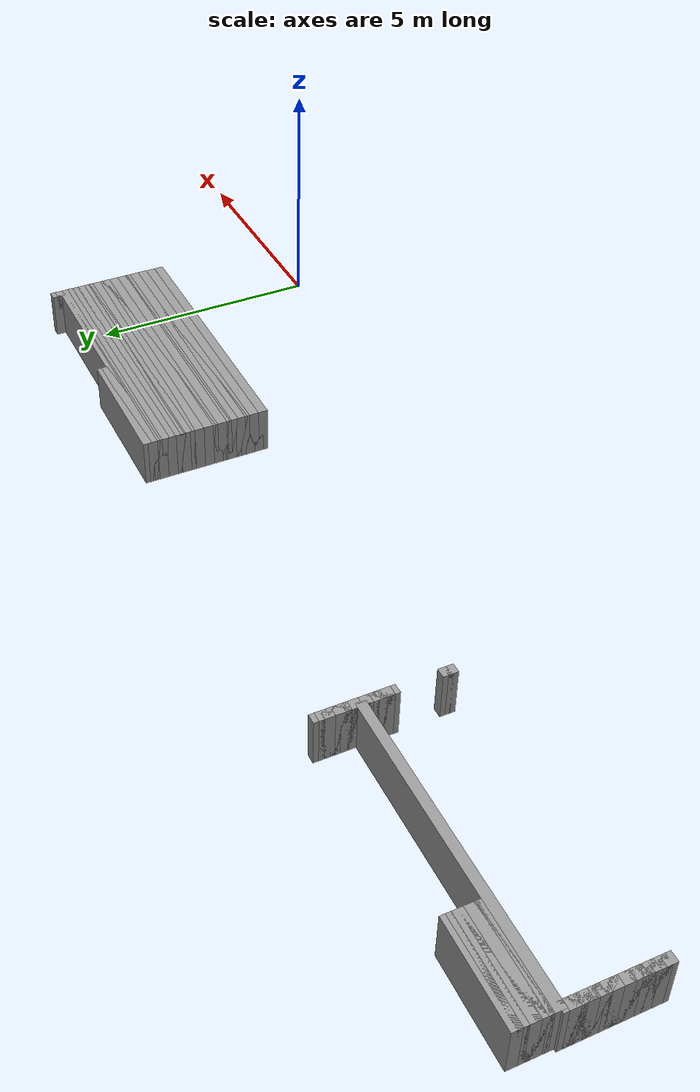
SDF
<sdf version="1.6">
 <world name="GridMap">
  <model name="GridMap">
   <link name="Wall_(198.5,35.0)">
    <collision name="Wall_(198.5,35.0)_Collision">
     <geometry><box><size>0.2 0.2 1.0</size></box></geometry>
     <pose>-19.85 3.5 0.5 0 -0 0</pose>
    </collision>
    <visual name="Wall_(198.5,35.0)_Visual">
     <geometry><box><size>0.2 0.2 1.0</size></box></geometry>
     <pose>-19.85 3.5 0.5 0 -0 0</pose>
     <material>
      <script><uri>file://media/materials/scripts/gazebo.material</uri><name>Gazebo/Grey</name></script>
      <ambient>1 1 1 1</ambient>
     </material>
     <meta><layer>0</layer></meta>
    </visual>
    <pose>0 0 0.5 0 -0 0</pose>
   </link>
   <link name="Wall_(30.0,36.0)">
    <collision name="Wall_(30.0,36.0)_Collision">
     <geometry><box><size>6.0 0.2 1.0</size></box></geometry>
     <pose>-3.0 3.6 0.5 0 -0 0</pose>
    </collision>
    <visual name="Wall_(30.0,36.0)_Visual">
     <geometry><box><size>6.0 0.2 1.0</size></box></geometry>
     <pose>-3.0 3.6 0.5 0 -0 0</pose>
     <material>
      <script><uri>file://media/materials/scripts/gazebo.material</uri><name>Gazebo/Grey</name></script>
      <ambient>1 1 1 1</ambient>
     </material>
     <meta><layer>0</layer></meta>
    </visual>
    <pose>0 0 0.5 0 -0 0</pose>
   </link>
   <link name="Wall_(138.0,36.0)">
    <collision name="Wall_(138.0,36.0)_Collision">
     <geometry><box><size>0.2 0.2 1.0</size></box></geometry>
     <pose>-13.8 3.6 0.5 0 -0 0</pose>
    </collision>
    <visual name="Wall_(138.0,36.0)_Visual">
     <geometry><box><size>0.2 0.2 1.0</size></box></geometry>
     <pose>-13.8 3.6 0.5 0 -0 0</pose>
     <material>
      <script><uri>file://media/materials/scripts/gazebo.material</uri><name>Gazebo/Grey</name></script>
      <ambient>1 1 1 1</ambient>
     </material>
     <meta><layer>0</layer></meta>
    </visual>
    <pose>0 0 0.5 0 -0 0</pose>
   </link>
   <link name="Wall_(198.5,36.0)">
    <collision name="Wall_(198.5,36.0)_Collision">
     <geometry><box><size>0.2 0.2 1.0</size></box></geometry>
     <pose>-19.85 3.6 0.5 0 -0 0</pose>
    </collision>
    <visual name="Wall_(198.5,36.0)_Visual">
     <geometry><box><size>0.2 0.2 1.0</size></box></geometry>
     <pose>-19.85 3.6 0.5 0 -0 0</pose>
     <material>
      <script><uri>file://media/materials/scripts/gazebo.material</uri><name>Gazebo/Grey</name></script>
      <ambient>1 1 1 1</ambient>
     </material>
     <meta><layer>0</layer></meta>
    </visual>
    <pose>0 0 0.5 0 -0 0</pose>
   </link>
   <link name="Wall_(30.0,37.0)">
    <collision name="Wall_(30.0,37.0)_Collision">
     <geometry><box><size>6.0 0.2 1.0</size></box></geometry>
     <pose>-3.0 3.7 0.5 0 -0 0</pose>
    </collision>
    <visual name="Wall_(30.0,37.0)_Visual">
     <geometry><box><size>6.0 0.2 1.0</size></box></geometry>
     <pose>-3.0 3.7 0.5 0 -0 0</pose>
     <material>
      <script><uri>file://media/materials/scripts/gazebo.material</uri><name>Gazebo/Grey</name></script>
      <ambient>1 1 1 1</ambient>
     </material>
     <meta><layer>0</layer></meta>
    </visual>
    <pose>0 0 0.5 0 -0 0</pose>
   </link>
   <link name="Wall_(138.0,37.0)">
    <collision name="Wall_(138.0,37.0)_Collision">
     <geometry><box><size>0.2 0.2 1.0</size></box></geometry>
     <pose>-13.8 3.7 0.5 0 -0 0</pose>
    </collision>
    <visual name="Wall_(138.0,37.0)_Visual">
     <geometry><box><size>0.2 0.2 1.0</size></box></geometry>
     <pose>-13.8 3.7 0.5 0 -0 0</pose>
     <material>
      <script><uri>file://media/materials/scripts/gazebo.material</uri><name>Gazebo/Grey</name></script>
      <ambient>1 1 1 1</ambient>
     </material>
     <meta><layer>0</layer></meta>
    </visual>
    <pose>0 0 0.5 0 -0 0</pose>
   </link>
   <link name="Wall_(198.5,37.0)">
    <collision name="Wall_(198.5,37.0)_Collision">
     <geometry><box><size>0.2 0.2 1.0</size></box></geometry>
     <pose>-19.85 3.7 0.5 0 -0 0</pose>
    </collision>
    <visual name="Wall_(198.5,37.0)_Visual">
     <geometry><box><size>0.2 0.2 1.0</size></box></geometry>
     <pose>-19.85 3.7 0.5 0 -0 0</pose>
     <material>
      <script><uri>file://media/materials/scripts/gazebo.material</uri><name>Gazebo/Grey</name></script>
      <ambient>1 1 1 1</ambient>
     </material>
     <meta><layer>0</layer></meta>
    </visual>
    <pose>0 0 0.5 0 -0 0</pose>
   </link>
   <link name="Wall_(30.0,38.0)">
    <collision name="Wall_(30.0,38.0)_Collision">
     <geometry><box><size>6.0 0.2 1.0</size></box></geometry>
     <pose>-3.0 3.8 0.5 0 -0 0</pose>
    </collision>
    <visual name="Wall_(30.0,38.0)_Visual">
     <geometry><box><size>6.0 0.2 1.0</size></box></geometry>
     <pose>-3.0 3.8 0.5 0 -0 0</pose>
     <material>
      <script><uri>file://media/materials/scripts/gazebo.material</uri><name>Gazebo/Grey</name></script>
      <ambient>1 1 1 1</ambient>
     </material>
     <meta><layer>0</layer></meta>
    </visual>
    <pose>0 0 0.5 0 -0 0</pose>
   </link>
   <link name="Wall_(198.5,38.0)">
    <collision name="Wall_(198.5,38.0)_Collision">
     <geometry><box><size>0.2 0.2 1.0</size></box></geometry>
     <pose>-19.85 3.8 0.5 0 -0 0</pose>
    </collision>
    <visual name="Wall_(198.5,38.0)_Visual">
     <geometry><box><size>0.2 0.2 1.0</size></box></geometry>
     <pose>-19.85 3.8 0.5 0 -0 0</pose>
     <material>
      <script><uri>file://media/materials/scripts/gazebo.material</uri><name>Gazebo/Grey</name></script>
      <ambient>1 1 1 1</ambient>
     </material>
     <meta><layer>0</layer></meta>
    </visual>
    <pose>0 0 0.5 0 -0 0</pose>
   </link>
   <link name="Wall_(30.0,39.0)">
    <collision name="Wall_(30.0,39.0)_Collision">
     <geometry><box><size>6.0 0.2 1.0</size></box></geometry>
     <pose>-3.0 3.9 0.5 0 -0 0</pose>
    </collision>
    <visual name="Wall_(30.0,39.0)_Visual">
     <geometry><box><size>6.0 0.2 1.0</size></box></geometry>
     <pose>-3.0 3.9 0.5 0 -0 0</pose>
     <material>
      <script><uri>file://media/materials/scripts/gazebo.material</uri><name>Gazebo/Grey</name></script>
      <ambient>1 1 1 1</ambient>
     </material>
     <meta><layer>0</layer></meta>
    </visual>
    <pose>0 0 0.5 0 -0 0</pose>
   </link>
   <link name="Wall_(198.5,39.0)">
    <collision name="Wall_(198.5,39.0)_Collision">
     <geometry><box><size>0.2 0.2 1.0</size></box></geometry>
     <pose>-19.85 3.9 0.5 0 -0 0</pose>
    </collision>
    <visual name="Wall_(198.5,39.0)_Visual">
     <geometry><box><size>0.2 0.2 1.0</size></box></geometry>
     <pose>-19.85 3.9 0.5 0 -0 0</pose>
     <material>
      <script><uri>file://media/materials/scripts/gazebo.material</uri><name>Gazebo/Grey</name></script>
      <ambient>1 1 1 1</ambient>
     </material>
     <meta><layer>0</layer></meta>
    </visual>
    <pose>0 0 0.5 0 -0 0</pose>
   </link>
   <link name="Wall_(30.0,40.0)">
    <collision name="Wall_(30.0,40.0)_Collision">
     <geometry><box><size>6.0 0.2 1.0</size></box></geometry>
     <pose>-3.0 4.0 0.5 0 -0 0</pose>
    </collision>
    <visual name="Wall_(30.0,40.0)_Visual">
     <geometry><box><size>6.0 0.2 1.0</size></box></geometry>
     <pose>-3.0 4.0 0.5 0 -0 0</pose>
     <material>
      <script><uri>file://media/materials/scripts/gazebo.material</uri><name>Gazebo/Grey</name></script>
      <ambient>1 1 1 1</ambient>
     </material>
     <meta><layer>0</layer></meta>
    </visual>
    <pose>0 0 0.5 0 -0 0</pose>
   </link>
   <link name="Wall_(198.5,40.0)">
    <collision name="Wall_(198.5,40.0)_Collision">
     <geometry><box><size>0.2 0.2 1.0</size></box></geometry>
     <pose>-19.85 4.0 0.5 0 -0 0</pose>
    </collision>
    <visual name="Wall_(198.5,40.0)_Visual">
     <geometry><box><size>0.2 0.2 1.0</size></box></geometry>
     <pose>-19.85 4.0 0.5 0 -0 0</pose>
     <material>
      <script><uri>file://media/materials/scripts/gazebo.material</uri><name>Gazebo/Grey</name></script>
      <ambient>1 1 1 1</ambient>
     </material>
     <meta><layer>0</layer></meta>
    </visual>
    <pose>0 0 0.5 0 -0 0</pose>
   </link>
   <link name="Wall_(30.0,41.0)">
    <collision name="Wall_(30.0,41.0)_Collision">
     <geometry><box><size>6.0 0.2 1.0</size></box></geometry>
     <pose>-3.0 4.1 0.5 0 -0 0</pose>
    </collision>
    <visual name="Wall_(30.0,41.0)_Visual">
     <geometry><box><size>6.0 0.2 1.0</size></box></geometry>
     <pose>-3.0 4.1 0.5 0 -0 0</pose>
     <material>
      <script><uri>file://media/materials/scripts/gazebo.material</uri><name>Gazebo/Grey</name></script>
      <ambient>1 1 1 1</ambient>
     </material>
     <meta><layer>0</layer></meta>
    </visual>
    <pose>0 0 0.5 0 -0 0</pose>
   </link>
   <link name="Wall_(198.5,41.0)">
    <collision name="Wall_(198.5,41.0)_Collision">
     <geometry><box><size>0.2 0.2 1.0</size></box></geometry>
     <pose>-19.85 4.1 0.5 0 -0 0</pose>
    </collision>
    <visual name="Wall_(198.5,41.0)_Visual">
     <geometry><box><size>0.2 0.2 1.0</size></box></geometry>
     <pose>-19.85 4.1 0.5 0 -0 0</pose>
     <material>
      <script><uri>file://media/materials/scripts/gazebo.material</uri><name>Gazebo/Grey</name></script>
      <ambient>1 1 1 1</ambient>
     </material>
     <meta><layer>0</layer></meta>
    </visual>
    <pose>0 0 0.5 0 -0 0</pose>
   </link>
   <link name="Wall_(30.0,42.0)">
    <collision name="Wall_(30.0,42.0)_Collision">
     <geometry><box><size>6.0 0.2 1.0</size></box></geometry>
     <pose>-3.0 4.2 0.5 0 -0 0</pose>
    </collision>
    <visual name="Wall_(30.0,42.0)_Visual">
     <geometry><box><size>6.0 0.2 1.0</size></box></geometry>
     <pose>-3.0 4.2 0.5 0 -0 0</pose>
     <material>
      <script><uri>file://media/materials/scripts/gazebo.material</uri><name>Gazebo/Grey</name></script>
      <ambient>1 1 1 1</ambient>
     </material>
     <meta><layer>0</layer></meta>
    </visual>
    <pose>0 0 0.5 0 -0 0</pose>
   </link>
   <link name="Wall_(198.5,42.0)">
    <collision name="Wall_(198.5,42.0)_Collision">
     <geometry><box><size>0.2 0.2 1.0</size></box></geometry>
     <pose>-19.85 4.2 0.5 0 -0 0</pose>
    </collision>
    <visual name="Wall_(198.5,42.0)_Visual">
     <geometry><box><size>0.2 0.2 1.0</size></box></geometry>
     <pose>-19.85 4.2 0.5 0 -0 0</pose>
     <material>
      <script><uri>file://media/materials/scripts/gazebo.material</uri><name>Gazebo/Grey</name></script>
      <ambient>1 1 1 1</ambient>
     </material>
     <meta><layer>0</layer></meta>
    </visual>
    <pose>0 0 0.5 0 -0 0</pose>
   </link>
   <link name="Wall_(30.0,43.0)">
    <collision name="Wall_(30.0,43.0)_Collision">
     <geometry><box><size>6.0 0.2 1.0</size></box></geometry>
     <pose>-3.0 4.3 0.5 0 -0 0</pose>
    </collision>
    <visual name="Wall_(30.0,43.0)_Visual">
     <geometry><box><size>6.0 0.2 1.0</size></box></geometry>
     <pose>-3.0 4.3 0.5 0 -0 0</pose>
     <material>
      <script><uri>file://media/materials/scripts/gazebo.material</uri><name>Gazebo/Grey</name></script>
      <ambient>1 1 1 1</ambient>
     </material>
     <meta><layer>0</layer></meta>
    </visual>
    <pose>0 0 0.5 0 -0 0</pose>
   </link>
   <link name="Wall_(198.5,43.0)">
    <collision name="Wall_(198.5,43.0)_Collision">
     <geometry><box><size>0.2 0.2 1.0</size></box></geometry>
     <pose>-19.85 4.3 0.5 0 -0 0</pose>
    </collision>
    <visual name="Wall_(198.5,43.0)_Visual">
     <geometry><box><size>0.2 0.2 1.0</size></box></geometry>
     <pose>-19.85 4.3 0.5 0 -0 0</pose>
     <material>
      <script><uri>file://media/materials/scripts/gazebo.material</uri><name>Gazebo/Grey</name></script>
      <ambient>1 1 1 1</ambient>
     </material>
     <meta><layer>0</layer></meta>
    </visual>
    <pose>0 0 0.5 0 -0 0</pose>
   </link>
   <link name="Wall_(30.0,44.0)">
    <collision name="Wall_(30.0,44.0)_Collision">
     <geometry><box><size>6.0 0.2 1.0</size></box></geometry>
     <pose>-3.0 4.4 0.5 0 -0 0</pose>
    </collision>
    <visual name="Wall_(30.0,44.0)_Visual">
     <geometry><box><size>6.0 0.2 1.0</size></box></geometry>
     <pose>-3.0 4.4 0.5 0 -0 0</pose>
     <material>
      <script><uri>file://media/materials/scripts/gazebo.material</uri><name>Gazebo/Grey</name></script>
      <ambient>1 1 1 1</ambient>
     </material>
     <meta><layer>0</layer></meta>
    </visual>
    <pose>0 0 0.5 0 -0 0</pose>
   </link>
   <link name="Wall_(198.5,44.0)">
    <collision name="Wall_(198.5,44.0)_Collision">
     <geometry><box><size>0.2 0.2 1.0</size></box></geometry>
     <pose>-19.85 4.4 0.5 0 -0 0</pose>
    </collision>
    <visual name="Wall_(198.5,44.0)_Visual">
     <geometry><box><size>0.2 0.2 1.0</size></box></geometry>
     <pose>-19.85 4.4 0.5 0 -0 0</pose>
     <material>
      <script><uri>file://media/materials/scripts/gazebo.material</uri><name>Gazebo/Grey</name></script>
      <ambient>1 1 1 1</ambient>
     </material>
     <meta><layer>0</layer></meta>
    </visual>
    <pose>0 0 0.5 0 -0 0</pose>
   </link>
   <link name="Wall_(30.0,45.0)">
    <collision name="Wall_(30.0,45.0)_Collision">
     <geometry><box><size>6.0 0.2 1.0</size></box></geometry>
     <pose>-3.0 4.5 0.5 0 -0 0</pose>
    </collision>
    <visual name="Wall_(30.0,45.0)_Visual">
     <geometry><box><size>6.0 0.2 1.0</size></box></geometry>
     <pose>-3.0 4.5 0.5 0 -0 0</pose>
     <material>
      <script><uri>file://media/materials/scripts/gazebo.material</uri><name>Gazebo/Grey</name></script>
      <ambient>1 1 1 1</ambient>
     </material>
     <meta><layer>0</layer></meta>
    </visual>
    <pose>0 0 0.5 0 -0 0</pose>
   </link>
   <link name="Wall_(198.5,45.0)">
    <collision name="Wall_(198.5,45.0)_Collision">
     <geometry><box><size>0.2 0.2 1.0</size></box></geometry>
     <pose>-19.85 4.5 0.5 0 -0 0</pose>
    </collision>
    <visual name="Wall_(198.5,45.0)_Visual">
     <geometry><box><size>0.2 0.2 1.0</size></box></geometry>
     <pose>-19.85 4.5 0.5 0 -0 0</pose>
     <material>
      <script><uri>file://media/materials/scripts/gazebo.material</uri><name>Gazebo/Grey</name></script>
      <ambient>1 1 1 1</ambient>
     </material>
     <meta><layer>0</layer></meta>
    </visual>
    <pose>0 0 0.5 0 -0 0</pose>
   </link>
   <link name="Wall_(30.0,46.0)">
    <collision name="Wall_(30.0,46.0)_Collision">
     <geometry><box><size>6.0 0.2 1.0</size></box></geometry>
     <pose>-3.0 4.6 0.5 0 -0 0</pose>
    </collision>
    <visual name="Wall_(30.0,46.0)_Visual">
     <geometry><box><size>6.0 0.2 1.0</size></box></geometry>
     <pose>-3.0 4.6 0.5 0 -0 0</pose>
     <material>
      <script><uri>file://media/materials/scripts/gazebo.material</uri><name>Gazebo/Grey</name></script>
      <ambient>1 1 1 1</ambient>
     </material>
     <meta><layer>0</layer></meta>
    </visual>
    <pose>0 0 0.5 0 -0 0</pose>
   </link>
   <link name="Wall_(198.5,46.0)">
    <collision name="Wall_(198.5,46.0)_Collision">
     <geometry><box><size>0.2 0.2 1.0</size></box></geometry>
     <pose>-19.85 4.6 0.5 0 -0 0</pose>
    </collision>
    <visual name="Wall_(198.5,46.0)_Visual">
     <geometry><box><size>0.2 0.2 1.0</size></box></geometry>
     <pose>-19.85 4.6 0.5 0 -0 0</pose>
     <material>
      <script><uri>file://media/materials/scripts/gazebo.material</uri><name>Gazebo/Grey</name></script>
      <ambient>1 1 1 1</ambient>
     </material>
     <meta><layer>0</layer></meta>
    </visual>
    <pose>0 0 0.5 0 -0 0</pose>
   </link>
   <link name="Wall_(30.0,47.0)">
    <collision name="Wall_(30.0,47.0)_Collision">
     <geometry><box><size>6.0 0.2 1.0</size></box></geometry>
     <pose>-3.0 4.7 0.5 0 -0 0</pose>
    </collision>
    <visual name="Wall_(30.0,47.0)_Visual">
     <geometry><box><size>6.0 0.2 1.0</size></box></geometry>
     <pose>-3.0 4.7 0.5 0 -0 0</pose>
     <material>
      <script><uri>file://media/materials/scripts/gazebo.material</uri><name>Gazebo/Grey</name></script>
      <ambient>1 1 1 1</ambient>
     </material>
     <meta><layer>0</layer></meta>
    </visual>
    <pose>0 0 0.5 0 -0 0</pose>
   </link>
   <link name="Wall_(138.0,47.0)">
    <collision name="Wall_(138.0,47.0)_Collision">
     <geometry><box><size>0.2 0.2 1.0</size></box></geometry>
     <pose>-13.8 4.7 0.5 0 -0 0</pose>
    </collision>
    <visual name="Wall_(138.0,47.0)_Visual">
     <geometry><box><size>0.2 0.2 1.0</size></box></geometry>
     <pose>-13.8 4.7 0.5 0 -0 0</pose>
     <material>
      <script><uri>file://media/materials/scripts/gazebo.material</uri><name>Gazebo/Grey</name></script>
      <ambient>1 1 1 1</ambient>
     </material>
     <meta><layer>0</layer></meta>
    </visual>
    <pose>0 0 0.5 0 -0 0</pose>
   </link>
   <link name="Wall_(198.5,47.0)">
    <collision name="Wall_(198.5,47.0)_Collision">
     <geometry><box><size>0.2 0.2 1.0</size></box></geometry>
     <pose>-19.85 4.7 0.5 0 -0 0</pose>
    </collision>
    <visual name="Wall_(198.5,47.0)_Visual">
     <geometry><box><size>0.2 0.2 1.0</size></box></geometry>
     <pose>-19.85 4.7 0.5 0 -0 0</pose>
     <material>
      <script><uri>file://media/materials/scripts/gazebo.material</uri><name>Gazebo/Grey</name></script>
      <ambient>1 1 1 1</ambient>
     </material>
     <meta><layer>0</layer></meta>
    </visual>
    <pose>0 0 0.5 0 -0 0</pose>
   </link>
   <link name="Wall_(30.0,48.0)">
    <collision name="Wall_(30.0,48.0)_Collision">
     <geometry><box><size>6.0 0.2 1.0</size></box></geometry>
     <pose>-3.0 4.8 0.5 0 -0 0</pose>
    </collision>
    <visual name="Wall_(30.0,48.0)_Visual">
     <geometry><box><size>6.0 0.2 1.0</size></box></geometry>
     <pose>-3.0 4.8 0.5 0 -0 0</pose>
     <material>
      <script><uri>file://media/materials/scripts/gazebo.material</uri><name>Gazebo/Grey</name></script>
      <ambient>1 1 1 1</ambient>
     </material>
     <meta><layer>0</layer></meta>
    </visual>
    <pose>0 0 0.5 0 -0 0</pose>
   </link>
   <link name="Wall_(138.0,48.0)">
    <collision name="Wall_(138.0,48.0)_Collision">
     <geometry><box><size>0.2 0.2 1.0</size></box></geometry>
     <pose>-13.8 4.8 0.5 0 -0 0</pose>
    </collision>
    <visual name="Wall_(138.0,48.0)_Visual">
     <geometry><box><size>0.2 0.2 1.0</size></box></geometry>
     <pose>-13.8 4.8 0.5 0 -0 0</pose>
     <material>
      <script><uri>file://media/materials/scripts/gazebo.material</uri><name>Gazebo/Grey</name></script>
      <ambient>1 1 1 1</ambient>
     </material>
     <meta><layer>0</layer></meta>
    </visual>
    <pose>0 0 0.5 0 -0 0</pose>
   </link>
   <link name="Wall_(198.5,48.0)">
    <collision name="Wall_(198.5,48.0)_Collision">
     <geometry><box><size>0.2 0.2 1.0</size></box></geometry>
     <pose>-19.85 4.8 0.5 0 -0 0</pose>
    </collision>
    <visual name="Wall_(198.5,48.0)_Visual">
     <geometry><box><size>0.2 0.2 1.0</size></box></geometry>
     <pose>-19.85 4.8 0.5 0 -0 0</pose>
     <material>
      <script><uri>file://media/materials/scripts/gazebo.material</uri><name>Gazebo/Grey</name></script>
      <ambient>1 1 1 1</ambient>
     </material>
     <meta><layer>0</layer></meta>
    </visual>
    <pose>0 0 0.5 0 -0 0</pose>
   </link>
   <link name="Wall_(30.0,49.0)">
    <collision name="Wall_(30.0,49.0)_Collision">
     <geometry><box><size>6.0 0.2 1.0</size></box></geometry>
     <pose>-3.0 4.9 0.5 0 -0 0</pose>
    </collision>
    <visual name="Wall_(30.0,49.0)_Visual">
     <geometry><box><size>6.0 0.2 1.0</size></box></geometry>
     <pose>-3.0 4.9 0.5 0 -0 0</pose>
     <material>
      <script><uri>file://media/materials/scripts/gazebo.material</uri><name>Gazebo/Grey</name></script>
      <ambient>1 1 1 1</ambient>
     </material>
     <meta><layer>0</layer></meta>
    </visual>
    <pose>0 0 0.5 0 -0 0</pose>
   </link>
   <link name="Wall_(138.0,49.0)">
    <collision name="Wall_(138.0,49.0)_Collision">
     <geometry><box><size>0.2 0.2 1.0</size></box></geometry>
     <pose>-13.8 4.9 0.5 0 -0 0</pose>
    </collision>
    <visual name="Wall_(138.0,49.0)_Visual">
     <geometry><box><size>0.2 0.2 1.0</size></box></geometry>
     <pose>-13.8 4.9 0.5 0 -0 0</pose>
     <material>
      <script><uri>file://media/materials/scripts/gazebo.material</uri><name>Gazebo/Grey</name></script>
      <ambient>1 1 1 1</ambient>
     </material>
     <meta><layer>0</layer></meta>
    </visual>
    <pose>0 0 0.5 0 -0 0</pose>
   </link>
   <link name="Wall_(198.5,49.0)">
    <collision name="Wall_(198.5,49.0)_Collision">
     <geometry><box><size>0.2 0.2 1.0</size></box></geometry>
     <pose>-19.85 4.9 0.5 0 -0 0</pose>
    </collision>
    <visual name="Wall_(198.5,49.0)_Visual">
     <geometry><box><size>0.2 0.2 1.0</size></box></geometry>
     <pose>-19.85 4.9 0.5 0 -0 0</pose>
     <material>
      <script><uri>file://media/materials/scripts/gazebo.material</uri><name>Gazebo/Grey</name></script>
      <ambient>1 1 1 1</ambient>
     </material>
     <meta><layer>0</layer></meta>
    </visual>
    <pose>0 0 0.5 0 -0 0</pose>
   </link>
   <link name="Wall_(30.0,50.0)">
    <collision name="Wall_(30.0,50.0)_Collision">
     <geometry><box><size>6.0 0.2 1.0</size></box></geometry>
     <pose>-3.0 5.0 0.5 0 -0 0</pose>
    </collision>
    <visual name="Wall_(30.0,50.0)_Visual">
     <geometry><box><size>6.0 0.2 1.0</size></box></geometry>
     <pose>-3.0 5.0 0.5 0 -0 0</pose>
     <material>
      <script><uri>file://media/materials/scripts/gazebo.material</uri><name>Gazebo/Grey</name></script>
      <ambient>1 1 1 1</ambient>
     </material>
     <meta><layer>0</layer></meta>
    </visual>
    <pose>0 0 0.5 0 -0 0</pose>
   </link>
   <link name="Wall_(138.0,50.0)">
    <collision name="Wall_(138.0,50.0)_Collision">
     <geometry><box><size>0.2 0.2 1.0</size></box></geometry>
     <pose>-13.8 5.0 0.5 0 -0 0</pose>
    </collision>
    <visual name="Wall_(138.0,50.0)_Visual">
     <geometry><box><size>0.2 0.2 1.0</size></box></geometry>
     <pose>-13.8 5.0 0.5 0 -0 0</pose>
     <material>
      <script><uri>file://media/materials/scripts/gazebo.material</uri><name>Gazebo/Grey</name></script>
      <ambient>1 1 1 1</ambient>
     </material>
     <meta><layer>0</layer></meta>
    </visual>
    <pose>0 0 0.5 0 -0 0</pose>
   </link>
   <link name="Wall_(198.5,50.0)">
    <collision name="Wall_(198.5,50.0)_Collision">
     <geometry><box><size>0.2 0.2 1.0</size></box></geometry>
     <pose>-19.85 5.0 0.5 0 -0 0</pose>
    </collision>
    <visual name="Wall_(198.5,50.0)_Visual">
     <geometry><box><size>0.2 0.2 1.0</size></box></geometry>
     <pose>-19.85 5.0 0.5 0 -0 0</pose>
     <material>
      <script><uri>file://media/materials/scripts/gazebo.material</uri><name>Gazebo/Grey</name></script>
      <ambient>1 1 1 1</ambient>
     </material>
     <meta><layer>0</layer></meta>
    </visual>
    <pose>0 0 0.5 0 -0 0</pose>
   </link>
   <link name="Wall_(30.0,51.0)">
    <collision name="Wall_(30.0,51.0)_Collision">
     <geometry><box><size>6.0 0.2 1.0</size></box></geometry>
     <pose>-3.0 5.1 0.5 0 -0 0</pose>
    </collision>
    <visual name="Wall_(30.0,51.0)_Visual">
     <geometry><box><size>6.0 0.2 1.0</size></box></geometry>
     <pose>-3.0 5.1 0.5 0 -0 0</pose>
     <material>
      <script><uri>file://media/materials/scripts/gazebo.material</uri><name>Gazebo/Grey</name></script>
      <ambient>1 1 1 1</ambient>
     </material>
     <meta><layer>0</layer></meta>
    </visual>
    <pose>0 0 0.5 0 -0 0</pose>
   </link>
   <link name="Wall_(138.0,51.0)">
    <collision name="Wall_(138.0,51.0)_Collision">
     <geometry><box><size>0.2 0.2 1.0</size></box></geometry>
     <pose>-13.8 5.1 0.5 0 -0 0</pose>
    </collision>
    <visual name="Wall_(138.0,51.0)_Visual">
     <geometry><box><size>0.2 0.2 1.0</size></box></geometry>
     <pose>-13.8 5.1 0.5 0 -0 0</pose>
     <material>
      <script><uri>file://media/materials/scripts/gazebo.material</uri><name>Gazebo/Grey</name></script>
      <ambient>1 1 1 1</ambient>
     </material>
     <meta><layer>0</layer></meta>
    </visual>
    <pose>0 0 0.5 0 -0 0</pose>
   </link>
   <link name="Wall_(198.5,51.0)">
    <collision name="Wall_(198.5,51.0)_Collision">
     <geometry><box><size>0.2 0.2 1.0</size></box></geometry>
     <pose>-19.85 5.1 0.5 0 -0 0</pose>
    </collision>
    <visual name="Wall_(198.5,51.0)_Visual">
     <geometry><box><size>0.2 0.2 1.0</size></box></geometry>
     <pose>-19.85 5.1 0.5 0 -0 0</pose>
     <material>
      <script><uri>file://media/materials/scripts/gazebo.material</uri><name>Gazebo/Grey</name></script>
      <ambient>1 1 1 1</ambient>
     </material>
     <meta><layer>0</layer></meta>
    </visual>
    <pose>0 0 0.5 0 -0 0</pose>
   </link>
   <link name="Wall_(30.0,52.0)">
    <collision name="Wall_(30.0,52.0)_Collision">
     <geometry><box><size>6.0 0.2 1.0</size></box></geometry>
     <pose>-3.0 5.2 0.5 0 -0 0</pose>
    </collision>
    <visual name="Wall_(30.0,52.0)_Visual">
     <geometry><box><size>6.0 0.2 1.0</size></box></geometry>
     <pose>-3.0 5.2 0.5 0 -0 0</pose>
     <material>
      <script><uri>file://media/materials/scripts/gazebo.material</uri><name>Gazebo/Grey</name></script>
      <ambient>1 1 1 1</ambient>
     </material>
     <meta><layer>0</layer></meta>
    </visual>
    <pose>0 0 0.5 0 -0 0</pose>
   </link>
   <link name="Wall_(138.0,52.0)">
    <collision name="Wall_(138.0,52.0)_Collision">
     <geometry><box><size>0.2 0.2 1.0</size></box></geometry>
     <pose>-13.8 5.2 0.5 0 -0 0</pose>
    </collision>
    <visual name="Wall_(138.0,52.0)_Visual">
     <geometry><box><size>0.2 0.2 1.0</size></box></geometry>
     <pose>-13.8 5.2 0.5 0 -0 0</pose>
     <material>
      <script><uri>file://media/materials/scripts/gazebo.material</uri><name>Gazebo/Grey</name></script>
      <ambient>1 1 1 1</ambient>
     </material>
     <meta><layer>0</layer></meta>
    </visual>
    <pose>0 0 0.5 0 -0 0</pose>
   </link>
   <link name="Wall_(198.5,52.0)">
    <collision name="Wall_(198.5,52.0)_Collision">
     <geometry><box><size>0.2 0.2 1.0</size></box></geometry>
     <pose>-19.85 5.2 0.5 0 -0 0</pose>
    </collision>
    <visual name="Wall_(198.5,52.0)_Visual">
     <geometry><box><size>0.2 0.2 1.0</size></box></geometry>
     <pose>-19.85 5.2 0.5 0 -0 0</pose>
     <material>
      <script><uri>file://media/materials/scripts/gazebo.material</uri><name>Gazebo/Grey</name></script>
      <ambient>1 1 1 1</ambient>
     </material>
     <meta><layer>0</layer></meta>
    </visual>
    <pose>0 0 0.5 0 -0 0</pose>
   </link>
   <link name="Wall_(30.0,53.0)">
    <collision name="Wall_(30.0,53.0)_Collision">
     <geometry><box><size>6.0 0.2 1.0</size></box></geometry>
     <pose>-3.0 5.3 0.5 0 -0 0</pose>
    </collision>
    <visual name="Wall_(30.0,53.0)_Visual">
     <geometry><box><size>6.0 0.2 1.0</size></box></geometry>
     <pose>-3.0 5.3 0.5 0 -0 0</pose>
     <material>
      <script><uri>file://media/materials/scripts/gazebo.material</uri><name>Gazebo/Grey</name></script>
      <ambient>1 1 1 1</ambient>
     </material>
     <meta><layer>0</layer></meta>
    </visual>
    <pose>0 0 0.5 0 -0 0</pose>
   </link>
   <link name="Wall_(168.5,53.0)">
    <collision name="Wall_(168.5,53.0)_Collision">
     <geometry><box><size>6.1 0.2 1.0</size></box></geometry>
     <pose>-16.85 5.3 0.5 0 -0 0</pose>
    </collision>
    <visual name="Wall_(168.5,53.0)_Visual">
     <geometry><box><size>6.1 0.2 1.0</size></box></geometry>
     <pose>-16.85 5.3 0.5 0 -0 0</pose>
     <material>
      <script><uri>file://media/materials/scripts/gazebo.material</uri><name>Gazebo/Grey</name></script>
      <ambient>1 1 1 1</ambient>
     </material>
     <meta><layer>0</layer></meta>
    </visual>
    <pose>0 0 0.5 0 -0 0</pose>
   </link>
   <link name="Wall_(30.0,54.0)">
    <collision name="Wall_(30.0,54.0)_Collision">
     <geometry><box><size>6.0 0.2 1.0</size></box></geometry>
     <pose>-3.0 5.4 0.5 0 -0 0</pose>
    </collision>
    <visual name="Wall_(30.0,54.0)_Visual">
     <geometry><box><size>6.0 0.2 1.0</size></box></geometry>
     <pose>-3.0 5.4 0.5 0 -0 0</pose>
     <material>
      <script><uri>file://media/materials/scripts/gazebo.material</uri><name>Gazebo/Grey</name></script>
      <ambient>1 1 1 1</ambient>
     </material>
     <meta><layer>0</layer></meta>
    </visual>
    <pose>0 0 0.5 0 -0 0</pose>
   </link>
   <link name="Wall_(138.0,54.0)">
    <collision name="Wall_(138.0,54.0)_Collision">
     <geometry><box><size>0.2 0.2 1.0</size></box></geometry>
     <pose>-13.8 5.4 0.5 0 -0 0</pose>
    </collision>
    <visual name="Wall_(138.0,54.0)_Visual">
     <geometry><box><size>0.2 0.2 1.0</size></box></geometry>
     <pose>-13.8 5.4 0.5 0 -0 0</pose>
     <material>
      <script><uri>file://media/materials/scripts/gazebo.material</uri><name>Gazebo/Grey</name></script>
      <ambient>1 1 1 1</ambient>
     </material>
     <meta><layer>0</layer></meta>
    </visual>
    <pose>0 0 0.5 0 -0 0</pose>
   </link>
   <link name="Wall_(189.0,54.0)">
    <collision name="Wall_(189.0,54.0)_Collision">
     <geometry><box><size>2.0 0.2 1.0</size></box></geometry>
     <pose>-18.9 5.4 0.5 0 -0 0</pose>
    </collision>
    <visual name="Wall_(189.0,54.0)_Visual">
     <geometry><box><size>2.0 0.2 1.0</size></box></geometry>
     <pose>-18.9 5.4 0.5 0 -0 0</pose>
     <material>
      <script><uri>file://media/materials/scripts/gazebo.material</uri><name>Gazebo/Grey</name></script>
      <ambient>1 1 1 1</ambient>
     </material>
     <meta><layer>0</layer></meta>
    </visual>
    <pose>0 0 0.5 0 -0 0</pose>
   </link>
   <link name="Wall_(30.0,55.0)">
    <collision name="Wall_(30.0,55.0)_Collision">
     <geometry><box><size>6.0 0.2 1.0</size></box></geometry>
     <pose>-3.0 5.5 0.5 0 -0 0</pose>
    </collision>
    <visual name="Wall_(30.0,55.0)_Visual">
     <geometry><box><size>6.0 0.2 1.0</size></box></geometry>
     <pose>-3.0 5.5 0.5 0 -0 0</pose>
     <material>
      <script><uri>file://media/materials/scripts/gazebo.material</uri><name>Gazebo/Grey</name></script>
      <ambient>1 1 1 1</ambient>
     </material>
     <meta><layer>0</layer></meta>
    </visual>
    <pose>0 0 0.5 0 -0 0</pose>
   </link>
   <link name="Wall_(138.0,55.0)">
    <collision name="Wall_(138.0,55.0)_Collision">
     <geometry><box><size>0.2 0.2 1.0</size></box></geometry>
     <pose>-13.8 5.5 0.5 0 -0 0</pose>
    </collision>
    <visual name="Wall_(138.0,55.0)_Visual">
     <geometry><box><size>0.2 0.2 1.0</size></box></geometry>
     <pose>-13.8 5.5 0.5 0 -0 0</pose>
     <material>
      <script><uri>file://media/materials/scripts/gazebo.material</uri><name>Gazebo/Grey</name></script>
      <ambient>1 1 1 1</ambient>
     </material>
     <meta><layer>0</layer></meta>
    </visual>
    <pose>0 0 0.5 0 -0 0</pose>
   </link>
   <link name="Wall_(189.0,55.0)">
    <collision name="Wall_(189.0,55.0)_Collision">
     <geometry><box><size>2.0 0.2 1.0</size></box></geometry>
     <pose>-18.9 5.5 0.5 0 -0 0</pose>
    </collision>
    <visual name="Wall_(189.0,55.0)_Visual">
     <geometry><box><size>2.0 0.2 1.0</size></box></geometry>
     <pose>-18.9 5.5 0.5 0 -0 0</pose>
     <material>
      <script><uri>file://media/materials/scripts/gazebo.material</uri><name>Gazebo/Grey</name></script>
      <ambient>1 1 1 1</ambient>
     </material>
     <meta><layer>0</layer></meta>
    </visual>
    <pose>0 0 0.5 0 -0 0</pose>
   </link>
   <link name="Wall_(30.0,56.0)">
    <collision name="Wall_(30.0,56.0)_Collision">
     <geometry><box><size>6.0 0.2 1.0</size></box></geometry>
     <pose>-3.0 5.6 0.5 0 -0 0</pose>
    </collision>
    <visual name="Wall_(30.0,56.0)_Visual">
     <geometry><box><size>6.0 0.2 1.0</size></box></geometry>
     <pose>-3.0 5.6 0.5 0 -0 0</pose>
     <material>
      <script><uri>file://media/materials/scripts/gazebo.material</uri><name>Gazebo/Grey</name></script>
      <ambient>1 1 1 1</ambient>
     </material>
     <meta><layer>0</layer></meta>
    </visual>
    <pose>0 0 0.5 0 -0 0</pose>
   </link>
   <link name="Wall_(138.0,56.0)">
    <collision name="Wall_(138.0,56.0)_Collision">
     <geometry><box><size>0.2 0.2 1.0</size></box></geometry>
     <pose>-13.8 5.6 0.5 0 -0 0</pose>
    </collision>
    <visual name="Wall_(138.0,56.0)_Visual">
     <geometry><box><size>0.2 0.2 1.0</size></box></geometry>
     <pose>-13.8 5.6 0.5 0 -0 0</pose>
     <material>
      <script><uri>file://media/materials/scripts/gazebo.material</uri><name>Gazebo/Grey</name></script>
      <ambient>1 1 1 1</ambient>
     </material>
     <meta><layer>0</layer></meta>
    </visual>
    <pose>0 0 0.5 0 -0 0</pose>
   </link>
   <link name="Wall_(189.0,56.0)">
    <collision name="Wall_(189.0,56.0)_Collision">
     <geometry><box><size>2.0 0.2 1.0</size></box></geometry>
     <pose>-18.9 5.6 0.5 0 -0 0</pose>
    </collision>
    <visual name="Wall_(189.0,56.0)_Visual">
     <geometry><box><size>2.0 0.2 1.0</size></box></geometry>
     <pose>-18.9 5.6 0.5 0 -0 0</pose>
     <material>
      <script><uri>file://media/materials/scripts/gazebo.material</uri><name>Gazebo/Grey</name></script>
      <ambient>1 1 1 1</ambient>
     </material>
     <meta><layer>0</layer></meta>
    </visual>
    <pose>0 0 0.5 0 -0 0</pose>
   </link>
   <link name="Wall_(30.0,57.0)">
    <collision name="Wall_(30.0,57.0)_Collision">
     <geometry><box><size>6.0 0.2 1.0</size></box></geometry>
     <pose>-3.0 5.7 0.5 0 -0 0</pose>
    </collision>
    <visual name="Wall_(30.0,57.0)_Visual">
     <geometry><box><size>6.0 0.2 1.0</size></box></geometry>
     <pose>-3.0 5.7 0.5 0 -0 0</pose>
     <material>
      <script><uri>file://media/materials/scripts/gazebo.material</uri><name>Gazebo/Grey</name></script>
      <ambient>1 1 1 1</ambient>
     </material>
     <meta><layer>0</layer></meta>
    </visual>
    <pose>0 0 0.5 0 -0 0</pose>
   </link>
   <link name="Wall_(138.0,57.0)">
    <collision name="Wall_(138.0,57.0)_Collision">
     <geometry><box><size>0.2 0.2 1.0</size></box></geometry>
     <pose>-13.8 5.7 0.5 0 -0 0</pose>
    </collision>
    <visual name="Wall_(138.0,57.0)_Visual">
     <geometry><box><size>0.2 0.2 1.0</size></box></geometry>
     <pose>-13.8 5.7 0.5 0 -0 0</pose>
     <material>
      <script><uri>file://media/materials/scripts/gazebo.material</uri><name>Gazebo/Grey</name></script>
      <ambient>1 1 1 1</ambient>
     </material>
     <meta><layer>0</layer></meta>
    </visual>
    <pose>0 0 0.5 0 -0 0</pose>
   </link>
   <link name="Wall_(189.0,57.0)">
    <collision name="Wall_(189.0,57.0)_Collision">
     <geometry><box><size>2.0 0.2 1.0</size></box></geometry>
     <pose>-18.9 5.7 0.5 0 -0 0</pose>
    </collision>
    <visual name="Wall_(189.0,57.0)_Visual">
     <geometry><box><size>2.0 0.2 1.0</size></box></geometry>
     <pose>-18.9 5.7 0.5 0 -0 0</pose>
     <material>
      <script><uri>file://media/materials/scripts/gazebo.material</uri><name>Gazebo/Grey</name></script>
      <ambient>1 1 1 1</ambient>
     </material>
     <meta><layer>0</layer></meta>
    </visual>
    <pose>0 0 0.5 0 -0 0</pose>
   </link>
   <link name="Wall_(30.0,58.0)">
    <collision name="Wall_(30.0,58.0)_Collision">
     <geometry><box><size>6.0 0.2 1.0</size></box></geometry>
     <pose>-3.0 5.8 0.5 0 -0 0</pose>
    </collision>
    <visual name="Wall_(30.0,58.0)_Visual">
     <geometry><box><size>6.0 0.2 1.0</size></box></geometry>
     <pose>-3.0 5.8 0.5 0 -0 0</pose>
     <material>
      <script><uri>file://media/materials/scripts/gazebo.material</uri><name>Gazebo/Grey</name></script>
      <ambient>1 1 1 1</ambient>
     </material>
     <meta><layer>0</layer></meta>
    </visual>
    <pose>0 0 0.5 0 -0 0</pose>
   </link>
   <link name="Wall_(138.0,58.0)">
    <collision name="Wall_(138.0,58.0)_Collision">
     <geometry><box><size>0.2 0.2 1.0</size></box></geometry>
     <pose>-13.8 5.8 0.5 0 -0 0</pose>
    </collision>
    <visual name="Wall_(138.0,58.0)_Visual">
     <geometry><box><size>0.2 0.2 1.0</size></box></geometry>
     <pose>-13.8 5.8 0.5 0 -0 0</pose>
     <material>
      <script><uri>file://media/materials/scripts/gazebo.material</uri><name>Gazebo/Grey</name></script>
      <ambient>1 1 1 1</ambient>
     </material>
     <meta><layer>0</layer></meta>
    </visual>
    <pose>0 0 0.5 0 -0 0</pose>
   </link>
   <link name="Wall_(189.0,58.0)">
    <collision name="Wall_(189.0,58.0)_Collision">
     <geometry><box><size>2.0 0.2 1.0</size></box></geometry>
     <pose>-18.9 5.8 0.5 0 -0 0</pose>
    </collision>
    <visual name="Wall_(189.0,58.0)_Visual">
     <geometry><box><size>2.0 0.2 1.0</size></box></geometry>
     <pose>-18.9 5.8 0.5 0 -0 0</pose>
     <material>
      <script><uri>file://media/materials/scripts/gazebo.material</uri><name>Gazebo/Grey</name></script>
      <ambient>1 1 1 1</ambient>
     </material>
     <meta><layer>0</layer></meta>
    </visual>
    <pose>0 0 0.5 0 -0 0</pose>
   </link>
   <link name="Wall_(30.0,59.0)">
    <collision name="Wall_(30.0,59.0)_Collision">
     <geometry><box><size>6.0 0.2 1.0</size></box></geometry>
     <pose>-3.0 5.9 0.5 0 -0 0</pose>
    </collision>
    <visual name="Wall_(30.0,59.0)_Visual">
     <geometry><box><size>6.0 0.2 1.0</size></box></geometry>
     <pose>-3.0 5.9 0.5 0 -0 0</pose>
     <material>
      <script><uri>file://media/materials/scripts/gazebo.material</uri><name>Gazebo/Grey</name></script>
      <ambient>1 1 1 1</ambient>
     </material>
     <meta><layer>0</layer></meta>
    </visual>
    <pose>0 0 0.5 0 -0 0</pose>
   </link>
   <link name="Wall_(138.0,59.0)">
    <collision name="Wall_(138.0,59.0)_Collision">
     <geometry><box><size>0.2 0.2 1.0</size></box></geometry>
     <pose>-13.8 5.9 0.5 0 -0 0</pose>
    </collision>
    <visual name="Wall_(138.0,59.0)_Visual">
     <geometry><box><size>0.2 0.2 1.0</size></box></geometry>
     <pose>-13.8 5.9 0.5 0 -0 0</pose>
     <material>
      <script><uri>file://media/materials/scripts/gazebo.material</uri><name>Gazebo/Grey</name></script>
      <ambient>1 1 1 1</ambient>
     </material>
     <meta><layer>0</layer></meta>
    </visual>
    <pose>0 0 0.5 0 -0 0</pose>
   </link>
   <link name="Wall_(189.0,59.0)">
    <collision name="Wall_(189.0,59.0)_Collision">
     <geometry><box><size>2.0 0.2 1.0</size></box></geometry>
     <pose>-18.9 5.9 0.5 0 -0 0</pose>
    </collision>
    <visual name="Wall_(189.0,59.0)_Visual">
     <geometry><box><size>2.0 0.2 1.0</size></box></geometry>
     <pose>-18.9 5.9 0.5 0 -0 0</pose>
     <material>
      <script><uri>file://media/materials/scripts/gazebo.material</uri><name>Gazebo/Grey</name></script>
      <ambient>1 1 1 1</ambient>
     </material>
     <meta><layer>0</layer></meta>
    </visual>
    <pose>0 0 0.5 0 -0 0</pose>
   </link>
   <link name="Wall_(1.0,60.0)">
    <collision name="Wall_(1.0,60.0)_Collision">
     <geometry><box><size>0.2 0.2 1.0</size></box></geometry>
     <pose>-0.1 6.0 0.5 0 -0 0</pose>
    </collision>
    <visual name="Wall_(1.0,60.0)_Visual">
     <geometry><box><size>0.2 0.2 1.0</size></box></geometry>
     <pose>-0.1 6.0 0.5 0 -0 0</pose>
     <material>
      <script><uri>file://media/materials/scripts/gazebo.material</uri><name>Gazebo/Grey</name></script>
      <ambient>1 1 1 1</ambient>
     </material>
     <meta><layer>0</layer></meta>
    </visual>
    <pose>0 0 0.5 0 -0 0</pose>
   </link>
   <link name="Wall_(46.0,60.0)">
    <collision name="Wall_(46.0,60.0)_Collision">
     <geometry><box><size>2.8 0.2 1.0</size></box></geometry>
     <pose>-4.6 6.0 0.5 0 -0 0</pose>
    </collision>
    <visual name="Wall_(46.0,60.0)_Visual">
     <geometry><box><size>2.8 0.2 1.0</size></box></geometry>
     <pose>-4.6 6.0 0.5 0 -0 0</pose>
     <material>
      <script><uri>file://media/materials/scripts/gazebo.material</uri><name>Gazebo/Grey</name></script>
      <ambient>1 1 1 1</ambient>
     </material>
     <meta><layer>0</layer></meta>
    </visual>
    <pose>0 0 0.5 0 -0 0</pose>
   </link>
   <link name="Wall_(138.0,60.0)">
    <collision name="Wall_(138.0,60.0)_Collision">
     <geometry><box><size>0.2 0.2 1.0</size></box></geometry>
     <pose>-13.8 6.0 0.5 0 -0 0</pose>
    </collision>
    <visual name="Wall_(138.0,60.0)_Visual">
     <geometry><box><size>0.2 0.2 1.0</size></box></geometry>
     <pose>-13.8 6.0 0.5 0 -0 0</pose>
     <material>
      <script><uri>file://media/materials/scripts/gazebo.material</uri><name>Gazebo/Grey</name></script>
      <ambient>1 1 1 1</ambient>
     </material>
     <meta><layer>0</layer></meta>
    </visual>
    <pose>0 0 0.5 0 -0 0</pose>
   </link>
   <link name="Wall_(189.0,60.0)">
    <collision name="Wall_(189.0,60.0)_Collision">
     <geometry><box><size>2.0 0.2 1.0</size></box></geometry>
     <pose>-18.9 6.0 0.5 0 -0 0</pose>
    </collision>
    <visual name="Wall_(189.0,60.0)_Visual">
     <geometry><box><size>2.0 0.2 1.0</size></box></geometry>
     <pose>-18.9 6.0 0.5 0 -0 0</pose>
     <material>
      <script><uri>file://media/materials/scripts/gazebo.material</uri><name>Gazebo/Grey</name></script>
      <ambient>1 1 1 1</ambient>
     </material>
     <meta><layer>0</layer></meta>
    </visual>
    <pose>0 0 0.5 0 -0 0</pose>
   </link>
   <link name="Wall_(1.0,61.0)">
    <collision name="Wall_(1.0,61.0)_Collision">
     <geometry><box><size>0.2 0.2 1.0</size></box></geometry>
     <pose>-0.1 6.1 0.5 0 -0 0</pose>
    </collision>
    <visual name="Wall_(1.0,61.0)_Visual">
     <geometry><box><size>0.2 0.2 1.0</size></box></geometry>
     <pose>-0.1 6.1 0.5 0 -0 0</pose>
     <material>
      <script><uri>file://media/materials/scripts/gazebo.material</uri><name>Gazebo/Grey</name></script>
      <ambient>1 1 1 1</ambient>
     </material>
     <meta><layer>0</layer></meta>
    </visual>
    <pose>0 0 0.5 0 -0 0</pose>
   </link>
   <link name="Wall_(46.0,61.0)">
    <collision name="Wall_(46.0,61.0)_Collision">
     <geometry><box><size>2.8 0.2 1.0</size></box></geometry>
     <pose>-4.6 6.1 0.5 0 -0 0</pose>
    </collision>
    <visual name="Wall_(46.0,61.0)_Visual">
     <geometry><box><size>2.8 0.2 1.0</size></box></geometry>
     <pose>-4.6 6.1 0.5 0 -0 0</pose>
     <material>
      <script><uri>file://media/materials/scripts/gazebo.material</uri><name>Gazebo/Grey</name></script>
      <ambient>1 1 1 1</ambient>
     </material>
     <meta><layer>0</layer></meta>
    </visual>
    <pose>0 0 0.5 0 -0 0</pose>
   </link>
   <link name="Wall_(138.0,61.0)">
    <collision name="Wall_(138.0,61.0)_Collision">
     <geometry><box><size>0.2 0.2 1.0</size></box></geometry>
     <pose>-13.8 6.1 0.5 0 -0 0</pose>
    </collision>
    <visual name="Wall_(138.0,61.0)_Visual">
     <geometry><box><size>0.2 0.2 1.0</size></box></geometry>
     <pose>-13.8 6.1 0.5 0 -0 0</pose>
     <material>
      <script><uri>file://media/materials/scripts/gazebo.material</uri><name>Gazebo/Grey</name></script>
      <ambient>1 1 1 1</ambient>
     </material>
     <meta><layer>0</layer></meta>
    </visual>
    <pose>0 0 0.5 0 -0 0</pose>
   </link>
   <static>1</static>
  </model>
 </world>
</sdf>
